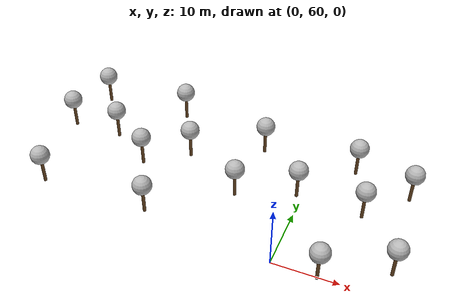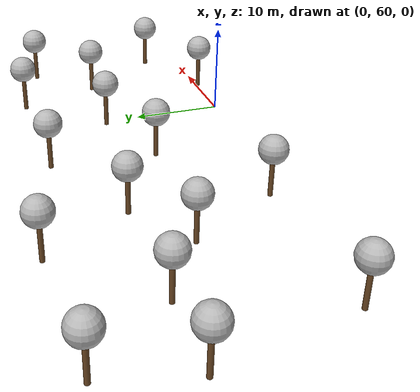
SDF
<sdf version="1.7">
 <world name="default">
  <model name="tree_simple">
   <static>1</static>
   <link name="link">
    <pose>0 0 0.1 0 -0 0</pose>
    <inertial>
     <mass>666</mass>
     <inertia>
      <ixx>0.0861167</ixx>
      <ixy>0</ixy>
      <ixz>0</ixz>
      <iyy>0.0861167</iyy>
      <iyz>0</iyz>
      <izz>0.0861167</izz>
     </inertia>
    </inertial>
    <collision name="collision_trunk">
     <pose>0 0 2 0 -0 0</pose>
     <geometry><cylinder><radius>0.25</radius><length>4</length></cylinder></geometry>
     <surface>
      <contact>
       <poissons_ratio>0.347</poissons_ratio>
       <elastic_modulus>8.8e+09</elastic_modulus>
       <ode><kp>100000</kp><kd>100</kd><max_vel>100</max_vel><min_depth>0.001</min_depth></ode>
      </contact>
      <friction>
       <torsional>
        <coefficient>1</coefficient>
        <use_patch_radius>0</use_patch_radius>
        <surface_radius>0.01</surface_radius>
       </torsional>
      </friction>
     </surface>
    </collision>
    <collision name="collision_treetop">
     <pose>0 0 5.2 0 -0 0</pose>
     <geometry><sphere><radius>1.5</radius></sphere></geometry>
     <surface>
      <contact>
       <poissons_ratio>0.347</poissons_ratio>
       <elastic_modulus>8.8e+09</elastic_modulus>
       <ode><kp>100000</kp><kd>100</kd><max_vel>100</max_vel><min_depth>0.001</min_depth></ode>
      </contact>
      <friction>
       <torsional>
        <coefficient>1</coefficient>
        <use_patch_radius>0</use_patch_radius>
        <surface_radius>0.01</surface_radius>
       </torsional>
      </friction>
     </surface>
    </collision>
    <visual name="trunk">
     <pose>0 0 2 0 -0 0</pose>
     <geometry><cylinder><radius>0.25</radius><length>4</length></cylinder></geometry>
     <material>
      <script>
       <uri>model://tree_simple/scripts</uri>
       <uri>model://tree_simple/materials/textures</uri>
       <name>TreeSimple/Trunk</name>
      </script>
     </material>
    </visual>
    <visual name="treetop">
     <pose>0 0 5.2 0 -0 0</pose>
     <geometry><sphere><radius>1.5</radius></sphere></geometry>
     <material>
      <script>
       <uri>model://tree_simple/scripts</uri>
       <uri>model://tree_simple/materials/textures</uri>
       <name>TreeSimple/Treetop</name>
      </script>
     </material>
    </visual>
   </link>
   <pose>6.82311 59.8354 0 0 -0 0</pose>
  </model>
  <model name="tree_simple_0_clone_0">
   <static>1</static>
   <link name="link">
    <pose>0 0 0.1 0 -0 0</pose>
    <inertial>
     <mass>666</mass>
     <inertia>
      <ixx>0.0861167</ixx>
      <ixy>0</ixy>
      <ixz>0</ixz>
      <iyy>0.0861167</iyy>
      <iyz>0</iyz>
      <izz>0.0861167</izz>
     </inertia>
    </inertial>
    <collision name="collision_trunk">
     <pose>0 0 2 0 -0 0</pose>
     <geometry><cylinder><radius>0.25</radius><length>4</length></cylinder></geometry>
     <surface>
      <contact>
       <poissons_ratio>0.347</poissons_ratio>
       <elastic_modulus>8.8e+09</elastic_modulus>
       <ode><kp>100000</kp><kd>100</kd><max_vel>100</max_vel><min_depth>0.001</min_depth></ode>
      </contact>
      <friction>
       <torsional>
        <coefficient>1</coefficient>
        <use_patch_radius>0</use_patch_radius>
        <surface_radius>0.01</surface_radius>
       </torsional>
      </friction>
     </surface>
    </collision>
    <collision name="collision_treetop">
     <pose>0 0 5.2 0 -0 0</pose>
     <geometry><sphere><radius>1.5</radius></sphere></geometry>
     <surface>
      <contact>
       <poissons_ratio>0.347</poissons_ratio>
       <elastic_modulus>8.8e+09</elastic_modulus>
       <ode><kp>100000</kp><kd>100</kd><max_vel>100</max_vel><min_depth>0.001</min_depth></ode>
      </contact>
      <friction>
       <torsional>
        <coefficient>1</coefficient>
        <use_patch_radius>0</use_patch_radius>
        <surface_radius>0.01</surface_radius>
       </torsional>
      </friction>
     </surface>
    </collision>
    <visual name="trunk">
     <pose>0 0 2 0 -0 0</pose>
     <geometry><cylinder><radius>0.25</radius><length>4</length></cylinder></geometry>
     <material>
      <script>
       <uri>model://tree_simple/scripts</uri>
       <uri>model://tree_simple/materials/textures</uri>
       <name>TreeSimple/Trunk</name>
      </script>
     </material>
    </visual>
    <visual name="treetop">
     <pose>0 0 5.2 0 -0 0</pose>
     <geometry><sphere><radius>1.5</radius></sphere></geometry>
     <material>
      <script>
       <uri>model://tree_simple/scripts</uri>
       <uri>model://tree_simple/materials/textures</uri>
       <name>TreeSimple/Treetop</name>
      </script>
     </material>
    </visual>
   </link>
   <pose>-26.1429 71.9417 0 0 -0 0</pose>
  </model>
  <model name="tree_simple_0_clone_0_clone_clone">
   <static>1</static>
   <link name="link">
    <pose>0 0 0.1 0 -0 0</pose>
    <inertial>
     <mass>666</mass>
     <inertia>
      <ixx>0.0861167</ixx>
      <ixy>0</ixy>
      <ixz>0</ixz>
      <iyy>0.0861167</iyy>
      <iyz>0</iyz>
      <izz>0.0861167</izz>
     </inertia>
    </inertial>
    <collision name="collision_trunk">
     <pose>0 0 2 0 -0 0</pose>
     <geometry><cylinder><radius>0.25</radius><length>4</length></cylinder></geometry>
     <surface>
      <contact>
       <poissons_ratio>0.347</poissons_ratio>
       <elastic_modulus>8.8e+09</elastic_modulus>
       <ode><kp>100000</kp><kd>100</kd><max_vel>100</max_vel><min_depth>0.001</min_depth></ode>
      </contact>
      <friction>
       <torsional>
        <coefficient>1</coefficient>
        <use_patch_radius>0</use_patch_radius>
        <surface_radius>0.01</surface_radius>
       </torsional>
      </friction>
     </surface>
    </collision>
    <collision name="collision_treetop">
     <pose>0 0 5.2 0 -0 0</pose>
     <geometry><sphere><radius>1.5</radius></sphere></geometry>
     <surface>
      <contact>
       <poissons_ratio>0.347</poissons_ratio>
       <elastic_modulus>8.8e+09</elastic_modulus>
       <ode><kp>100000</kp><kd>100</kd><max_vel>100</max_vel><min_depth>0.001</min_depth></ode>
      </contact>
      <friction>
       <torsional>
        <coefficient>1</coefficient>
        <use_patch_radius>0</use_patch_radius>
        <surface_radius>0.01</surface_radius>
       </torsional>
      </friction>
     </surface>
    </collision>
    <visual name="trunk">
     <pose>0 0 2 0 -0 0</pose>
     <geometry><cylinder><radius>0.25</radius><length>4</length></cylinder></geometry>
     <material>
      <script>
       <uri>model://tree_simple/scripts</uri>
       <uri>model://tree_simple/materials/textures</uri>
       <name>TreeSimple/Trunk</name>
      </script>
     </material>
    </visual>
    <visual name="treetop">
     <pose>0 0 5.2 0 -0 0</pose>
     <geometry><sphere><radius>1.5</radius></sphere></geometry>
     <material>
      <script>
       <uri>model://tree_simple/scripts</uri>
       <uri>model://tree_simple/materials/textures</uri>
       <name>TreeSimple/Treetop</name>
      </script>
     </material>
    </visual>
   </link>
   <pose>-38.4069 62.1845 0 0 -0 0</pose>
  </model>
  <model name="tree_simple_0_clone_0_clone_clone_0">
   <static>1</static>
   <link name="link">
    <pose>0 0 0.1 0 -0 0</pose>
    <inertial>
     <mass>666</mass>
     <inertia>
      <ixx>0.0861167</ixx>
      <ixy>0</ixy>
      <ixz>0</ixz>
      <iyy>0.0861167</iyy>
      <iyz>0</iyz>
      <izz>0.0861167</izz>
     </inertia>
    </inertial>
    <collision name="collision_trunk">
     <pose>0 0 2 0 -0 0</pose>
     <geometry><cylinder><radius>0.25</radius><length>4</length></cylinder></geometry>
     <surface>
      <contact>
       <poissons_ratio>0.347</poissons_ratio>
       <elastic_modulus>8.8e+09</elastic_modulus>
       <ode><kp>100000</kp><kd>100</kd><max_vel>100</max_vel><min_depth>0.001</min_depth></ode>
      </contact>
      <friction>
       <torsional>
        <coefficient>1</coefficient>
        <use_patch_radius>0</use_patch_radius>
        <surface_radius>0.01</surface_radius>
       </torsional>
      </friction>
     </surface>
    </collision>
    <collision name="collision_treetop">
     <pose>0 0 5.2 0 -0 0</pose>
     <geometry><sphere><radius>1.5</radius></sphere></geometry>
     <surface>
      <contact>
       <poissons_ratio>0.347</poissons_ratio>
       <elastic_modulus>8.8e+09</elastic_modulus>
       <ode><kp>100000</kp><kd>100</kd><max_vel>100</max_vel><min_depth>0.001</min_depth></ode>
      </contact>
      <friction>
       <torsional>
        <coefficient>1</coefficient>
        <use_patch_radius>0</use_patch_radius>
        <surface_radius>0.01</surface_radius>
       </torsional>
      </friction>
     </surface>
    </collision>
    <visual name="trunk">
     <pose>0 0 2 0 -0 0</pose>
     <geometry><cylinder><radius>0.25</radius><length>4</length></cylinder></geometry>
     <material>
      <script>
       <uri>model://tree_simple/scripts</uri>
       <uri>model://tree_simple/materials/textures</uri>
       <name>TreeSimple/Trunk</name>
      </script>
     </material>
    </visual>
    <visual name="treetop">
     <pose>0 0 5.2 0 -0 0</pose>
     <geometry><sphere><radius>1.5</radius></sphere></geometry>
     <material>
      <script>
       <uri>model://tree_simple/scripts</uri>
       <uri>model://tree_simple/materials/textures</uri>
       <name>TreeSimple/Treetop</name>
      </script>
     </material>
    </visual>
   </link>
   <pose>9.58213 73.4959 0 0 -0 0</pose>
  </model>
  <model name="tree_simple_0_clone_0_clone_clone_9">
   <static>1</static>
   <link name="link">
    <pose>0 0 0.1 0 -0 0</pose>
    <inertial>
     <mass>666</mass>
     <inertia>
      <ixx>0.0861167</ixx>
      <ixy>0</ixy>
      <ixz>0</ixz>
      <iyy>0.0861167</iyy>
      <iyz>0</iyz>
      <izz>0.0861167</izz>
     </inertia>
    </inertial>
    <collision name="collision_trunk">
     <pose>0 0 2 0 -0 0</pose>
     <geometry><cylinder><radius>0.25</radius><length>4</length></cylinder></geometry>
     <surface>
      <contact>
       <poissons_ratio>0.347</poissons_ratio>
       <elastic_modulus>8.8e+09</elastic_modulus>
       <ode><kp>100000</kp><kd>100</kd><max_vel>100</max_vel><min_depth>0.001</min_depth></ode>
      </contact>
      <friction>
       <torsional>
        <coefficient>1</coefficient>
        <use_patch_radius>0</use_patch_radius>
        <surface_radius>0.01</surface_radius>
       </torsional>
      </friction>
     </surface>
    </collision>
    <collision name="collision_treetop">
     <pose>0 0 5.2 0 -0 0</pose>
     <geometry><sphere><radius>1.5</radius></sphere></geometry>
     <surface>
      <contact>
       <poissons_ratio>0.347</poissons_ratio>
       <elastic_modulus>8.8e+09</elastic_modulus>
       <ode><kp>100000</kp><kd>100</kd><max_vel>100</max_vel><min_depth>0.001</min_depth></ode>
      </contact>
      <friction>
       <torsional>
        <coefficient>1</coefficient>
        <use_patch_radius>0</use_patch_radius>
        <surface_radius>0.01</surface_radius>
       </torsional>
      </friction>
     </surface>
    </collision>
    <visual name="trunk">
     <pose>0 0 2 0 -0 0</pose>
     <geometry><cylinder><radius>0.25</radius><length>4</length></cylinder></geometry>
     <material>
      <script>
       <uri>model://tree_simple/scripts</uri>
       <uri>model://tree_simple/materials/textures</uri>
       <name>TreeSimple/Trunk</name>
      </script>
     </material>
    </visual>
    <visual name="treetop">
     <pose>0 0 5.2 0 -0 0</pose>
     <geometry><sphere><radius>1.5</radius></sphere></geometry>
     <material>
      <script>
       <uri>model://tree_simple/scripts</uri>
       <uri>model://tree_simple/materials/textures</uri>
       <name>TreeSimple/Treetop</name>
      </script>
     </material>
    </visual>
   </link>
   <pose>-0.789798 74.0707 0 0 -0 0</pose>
  </model>
  <model name="tree_simple_0_clone_0_clone_clone_10">
   <static>1</static>
   <link name="link">
    <pose>0 0 0.1 0 -0 0</pose>
    <inertial>
     <mass>666</mass>
     <inertia>
      <ixx>0.0861167</ixx>
      <ixy>0</ixy>
      <ixz>0</ixz>
      <iyy>0.0861167</iyy>
      <iyz>0</iyz>
      <izz>0.0861167</izz>
     </inertia>
    </inertial>
    <collision name="collision_trunk">
     <pose>0 0 2 0 -0 0</pose>
     <geometry><cylinder><radius>0.25</radius><length>4</length></cylinder></geometry>
     <surface>
      <contact>
       <poissons_ratio>0.347</poissons_ratio>
       <elastic_modulus>8.8e+09</elastic_modulus>
       <ode><kp>100000</kp><kd>100</kd><max_vel>100</max_vel><min_depth>0.001</min_depth></ode>
      </contact>
      <friction>
       <torsional>
        <coefficient>1</coefficient>
        <use_patch_radius>0</use_patch_radius>
        <surface_radius>0.01</surface_radius>
       </torsional>
      </friction>
     </surface>
    </collision>
    <collision name="collision_treetop">
     <pose>0 0 5.2 0 -0 0</pose>
     <geometry><sphere><radius>1.5</radius></sphere></geometry>
     <surface>
      <contact>
       <poissons_ratio>0.347</poissons_ratio>
       <elastic_modulus>8.8e+09</elastic_modulus>
       <ode><kp>100000</kp><kd>100</kd><max_vel>100</max_vel><min_depth>0.001</min_depth></ode>
      </contact>
      <friction>
       <torsional>
        <coefficient>1</coefficient>
        <use_patch_radius>0</use_patch_radius>
        <surface_radius>0.01</surface_radius>
       </torsional>
      </friction>
     </surface>
    </collision>
    <visual name="trunk">
     <pose>0 0 2 0 -0 0</pose>
     <geometry><cylinder><radius>0.25</radius><length>4</length></cylinder></geometry>
     <material>
      <script>
       <uri>model://tree_simple/scripts</uri>
       <uri>model://tree_simple/materials/textures</uri>
       <name>TreeSimple/Trunk</name>
      </script>
     </material>
    </visual>
    <visual name="treetop">
     <pose>0 0 5.2 0 -0 0</pose>
     <geometry><sphere><radius>1.5</radius></sphere></geometry>
     <material>
      <script>
       <uri>model://tree_simple/scripts</uri>
       <uri>model://tree_simple/materials/textures</uri>
       <name>TreeSimple/Treetop</name>
      </script>
     </material>
    </visual>
   </link>
   <pose>-33.1642 76.5434 0 0 -0 0</pose>
  </model>
  <model name="tree_simple_0_clone_0_clone_clone_11">
   <static>1</static>
   <link name="link">
    <pose>0 0 0.1 0 -0 0</pose>
    <inertial>
     <mass>666</mass>
     <inertia>
      <ixx>0.0861167</ixx>
      <ixy>0</ixy>
      <ixz>0</ixz>
      <iyy>0.0861167</iyy>
      <iyz>0</iyz>
      <izz>0.0861167</izz>
     </inertia>
    </inertial>
    <collision name="collision_trunk">
     <pose>0 0 2 0 -0 0</pose>
     <geometry><cylinder><radius>0.25</radius><length>4</length></cylinder></geometry>
     <surface>
      <contact>
       <poissons_ratio>0.347</poissons_ratio>
       <elastic_modulus>8.8e+09</elastic_modulus>
       <ode><kp>100000</kp><kd>100</kd><max_vel>100</max_vel><min_depth>0.001</min_depth></ode>
      </contact>
      <friction>
       <torsional>
        <coefficient>1</coefficient>
        <use_patch_radius>0</use_patch_radius>
        <surface_radius>0.01</surface_radius>
       </torsional>
      </friction>
     </surface>
    </collision>
    <collision name="collision_treetop">
     <pose>0 0 5.2 0 -0 0</pose>
     <geometry><sphere><radius>1.5</radius></sphere></geometry>
     <surface>
      <contact>
       <poissons_ratio>0.347</poissons_ratio>
       <elastic_modulus>8.8e+09</elastic_modulus>
       <ode><kp>100000</kp><kd>100</kd><max_vel>100</max_vel><min_depth>0.001</min_depth></ode>
      </contact>
      <friction>
       <torsional>
        <coefficient>1</coefficient>
        <use_patch_radius>0</use_patch_radius>
        <surface_radius>0.01</surface_radius>
       </torsional>
      </friction>
     </surface>
    </collision>
    <visual name="trunk">
     <pose>0 0 2 0 -0 0</pose>
     <geometry><cylinder><radius>0.25</radius><length>4</length></cylinder></geometry>
     <material>
      <script>
       <uri>model://tree_simple/scripts</uri>
       <uri>model://tree_simple/materials/textures</uri>
       <name>TreeSimple/Trunk</name>
      </script>
     </material>
    </visual>
    <visual name="treetop">
     <pose>0 0 5.2 0 -0 0</pose>
     <geometry><sphere><radius>1.5</radius></sphere></geometry>
     <material>
      <script>
       <uri>model://tree_simple/scripts</uri>
       <uri>model://tree_simple/materials/textures</uri>
       <name>TreeSimple/Treetop</name>
      </script>
     </material>
    </visual>
   </link>
   <pose>-19.78 76.5403 0 0 -0 0</pose>
  </model>
  <model name="tree_simple_0_clone_0_clone_clone_11_clone_0">
   <static>1</static>
   <link name="link">
    <pose>0 0 0.1 0 -0 0</pose>
    <inertial>
     <mass>666</mass>
     <inertia>
      <ixx>0.0861167</ixx>
      <ixy>0</ixy>
      <ixz>0</ixz>
      <iyy>0.0861167</iyy>
      <iyz>0</iyz>
      <izz>0.0861167</izz>
     </inertia>
    </inertial>
    <collision name="collision_trunk">
     <pose>0 0 2 0 -0 0</pose>
     <geometry><cylinder><radius>0.25</radius><length>4</length></cylinder></geometry>
     <surface>
      <contact>
       <poissons_ratio>0.347</poissons_ratio>
       <elastic_modulus>8.8e+09</elastic_modulus>
       <ode><kp>100000</kp><kd>100</kd><max_vel>100</max_vel><min_depth>0.001</min_depth></ode>
      </contact>
      <friction>
       <torsional>
        <coefficient>1</coefficient>
        <use_patch_radius>0</use_patch_radius>
        <surface_radius>0.01</surface_radius>
       </torsional>
      </friction>
     </surface>
    </collision>
    <collision name="collision_treetop">
     <pose>0 0 5.2 0 -0 0</pose>
     <geometry><sphere><radius>1.5</radius></sphere></geometry>
     <surface>
      <contact>
       <poissons_ratio>0.347</poissons_ratio>
       <elastic_modulus>8.8e+09</elastic_modulus>
       <ode><kp>100000</kp><kd>100</kd><max_vel>100</max_vel><min_depth>0.001</min_depth></ode>
      </contact>
      <friction>
       <torsional>
        <coefficient>1</coefficient>
        <use_patch_radius>0</use_patch_radius>
        <surface_radius>0.01</surface_radius>
       </torsional>
      </friction>
     </surface>
    </collision>
    <visual name="trunk">
     <pose>0 0 2 0 -0 0</pose>
     <geometry><cylinder><radius>0.25</radius><length>4</length></cylinder></geometry>
     <material>
      <script>
       <uri>model://tree_simple/scripts</uri>
       <uri>model://tree_simple/materials/textures</uri>
       <name>TreeSimple/Trunk</name>
      </script>
     </material>
    </visual>
    <visual name="treetop">
     <pose>0 0 5.2 0 -0 0</pose>
     <geometry><sphere><radius>1.5</radius></sphere></geometry>
     <material>
      <script>
       <uri>model://tree_simple/scripts</uri>
       <uri>model://tree_simple/materials/textures</uri>
       <name>TreeSimple/Treetop</name>
      </script>
     </material>
    </visual>
   </link>
   <pose>-41.4475 76.4622 0 0 -0 0</pose>
  </model>
  <model name="tree_simple_0_clone_0_clone_clone_11_clone_1">
   <static>1</static>
   <link name="link">
    <pose>0 0 0.1 0 -0 0</pose>
    <inertial>
     <mass>666</mass>
     <inertia>
      <ixx>0.0861167</ixx>
      <ixy>0</ixy>
      <ixz>0</ixz>
      <iyy>0.0861167</iyy>
      <iyz>0</iyz>
      <izz>0.0861167</izz>
     </inertia>
    </inertial>
    <collision name="collision_trunk">
     <pose>0 0 2 0 -0 0</pose>
     <geometry><cylinder><radius>0.25</radius><length>4</length></cylinder></geometry>
     <surface>
      <contact>
       <poissons_ratio>0.347</poissons_ratio>
       <elastic_modulus>8.8e+09</elastic_modulus>
       <ode><kp>100000</kp><kd>100</kd><max_vel>100</max_vel><min_depth>0.001</min_depth></ode>
      </contact>
      <friction>
       <torsional>
        <coefficient>1</coefficient>
        <use_patch_radius>0</use_patch_radius>
        <surface_radius>0.01</surface_radius>
       </torsional>
      </friction>
     </surface>
    </collision>
    <collision name="collision_treetop">
     <pose>0 0 5.2 0 -0 0</pose>
     <geometry><sphere><radius>1.5</radius></sphere></geometry>
     <surface>
      <contact>
       <poissons_ratio>0.347</poissons_ratio>
       <elastic_modulus>8.8e+09</elastic_modulus>
       <ode><kp>100000</kp><kd>100</kd><max_vel>100</max_vel><min_depth>0.001</min_depth></ode>
      </contact>
      <friction>
       <torsional>
        <coefficient>1</coefficient>
        <use_patch_radius>0</use_patch_radius>
        <surface_radius>0.01</surface_radius>
       </torsional>
      </friction>
     </surface>
    </collision>
    <visual name="trunk">
     <pose>0 0 2 0 -0 0</pose>
     <geometry><cylinder><radius>0.25</radius><length>4</length></cylinder></geometry>
     <material>
      <script>
       <uri>model://tree_simple/scripts</uri>
       <uri>model://tree_simple/materials/textures</uri>
       <name>TreeSimple/Trunk</name>
      </script>
     </material>
    </visual>
    <visual name="treetop">
     <pose>0 0 5.2 0 -0 0</pose>
     <geometry><sphere><radius>1.5</radius></sphere></geometry>
     <material>
      <script>
       <uri>model://tree_simple/scripts</uri>
       <uri>model://tree_simple/materials/textures</uri>
       <name>TreeSimple/Treetop</name>
      </script>
     </material>
    </visual>
   </link>
   <pose>6.31212 82.5438 0 0 -0 0</pose>
  </model>
  <model name="tree_simple_0_clone_0_clone_clone_11_clone_2">
   <static>1</static>
   <link name="link">
    <pose>0 0 0.1 0 -0 0</pose>
    <inertial>
     <mass>666</mass>
     <inertia>
      <ixx>0.0861167</ixx>
      <ixy>0</ixy>
      <ixz>0</ixz>
      <iyy>0.0861167</iyy>
      <iyz>0</iyz>
      <izz>0.0861167</izz>
     </inertia>
    </inertial>
    <collision name="collision_trunk">
     <pose>0 0 2 0 -0 0</pose>
     <geometry><cylinder><radius>0.25</radius><length>4</length></cylinder></geometry>
     <surface>
      <contact>
       <poissons_ratio>0.347</poissons_ratio>
       <elastic_modulus>8.8e+09</elastic_modulus>
       <ode><kp>100000</kp><kd>100</kd><max_vel>100</max_vel><min_depth>0.001</min_depth></ode>
      </contact>
      <friction>
       <torsional>
        <coefficient>1</coefficient>
        <use_patch_radius>0</use_patch_radius>
        <surface_radius>0.01</surface_radius>
       </torsional>
      </friction>
     </surface>
    </collision>
    <collision name="collision_treetop">
     <pose>0 0 5.2 0 -0 0</pose>
     <geometry><sphere><radius>1.5</radius></sphere></geometry>
     <surface>
      <contact>
       <poissons_ratio>0.347</poissons_ratio>
       <elastic_modulus>8.8e+09</elastic_modulus>
       <ode><kp>100000</kp><kd>100</kd><max_vel>100</max_vel><min_depth>0.001</min_depth></ode>
      </contact>
      <friction>
       <torsional>
        <coefficient>1</coefficient>
        <use_patch_radius>0</use_patch_radius>
        <surface_radius>0.01</surface_radius>
       </torsional>
      </friction>
     </surface>
    </collision>
    <visual name="trunk">
     <pose>0 0 2 0 -0 0</pose>
     <geometry><cylinder><radius>0.25</radius><length>4</length></cylinder></geometry>
     <material>
      <script>
       <uri>model://tree_simple/scripts</uri>
       <uri>model://tree_simple/materials/textures</uri>
       <name>TreeSimple/Trunk</name>
      </script>
     </material>
    </visual>
    <visual name="treetop">
     <pose>0 0 5.2 0 -0 0</pose>
     <geometry><sphere><radius>1.5</radius></sphere></geometry>
     <material>
      <script>
       <uri>model://tree_simple/scripts</uri>
       <uri>model://tree_simple/materials/textures</uri>
       <name>TreeSimple/Treetop</name>
      </script>
     </material>
    </visual>
   </link>
   <pose>15.4317 79.7817 0 0 -0 0</pose>
  </model>
  <model name="tree_simple_0_clone_0_clone_clone_clone_0">
   <static>1</static>
   <link name="link">
    <pose>0 0 0.1 0 -0 0</pose>
    <inertial>
     <mass>666</mass>
     <inertia>
      <ixx>0.0861167</ixx>
      <ixy>0</ixy>
      <ixz>0</ixz>
      <iyy>0.0861167</iyy>
      <iyz>0</iyz>
      <izz>0.0861167</izz>
     </inertia>
    </inertial>
    <collision name="collision_trunk">
     <pose>0 0 2 0 -0 0</pose>
     <geometry><cylinder><radius>0.25</radius><length>4</length></cylinder></geometry>
     <surface>
      <contact>
       <poissons_ratio>0.347</poissons_ratio>
       <elastic_modulus>8.8e+09</elastic_modulus>
       <ode><kp>100000</kp><kd>100</kd><max_vel>100</max_vel><min_depth>0.001</min_depth></ode>
      </contact>
      <friction>
       <torsional>
        <coefficient>1</coefficient>
        <use_patch_radius>0</use_patch_radius>
        <surface_radius>0.01</surface_radius>
       </torsional>
      </friction>
     </surface>
    </collision>
    <collision name="collision_treetop">
     <pose>0 0 5.2 0 -0 0</pose>
     <geometry><sphere><radius>1.5</radius></sphere></geometry>
     <surface>
      <contact>
       <poissons_ratio>0.347</poissons_ratio>
       <elastic_modulus>8.8e+09</elastic_modulus>
       <ode><kp>100000</kp><kd>100</kd><max_vel>100</max_vel><min_depth>0.001</min_depth></ode>
      </contact>
      <friction>
       <torsional>
        <coefficient>1</coefficient>
        <use_patch_radius>0</use_patch_radius>
        <surface_radius>0.01</surface_radius>
       </torsional>
      </friction>
     </surface>
    </collision>
    <visual name="trunk">
     <pose>0 0 2 0 -0 0</pose>
     <geometry><cylinder><radius>0.25</radius><length>4</length></cylinder></geometry>
     <material>
      <script>
       <uri>model://tree_simple/scripts</uri>
       <uri>model://tree_simple/materials/textures</uri>
       <name>TreeSimple/Trunk</name>
      </script>
     </material>
    </visual>
    <visual name="treetop">
     <pose>0 0 5.2 0 -0 0</pose>
     <geometry><sphere><radius>1.5</radius></sphere></geometry>
     <material>
      <script>
       <uri>model://tree_simple/scripts</uri>
       <uri>model://tree_simple/materials/textures</uri>
       <name>TreeSimple/Treetop</name>
      </script>
     </material>
    </visual>
   </link>
   <pose>-20.859 62.2392 0 0 -0 0</pose>
  </model>
  <model name="tree_simple_0_clone_0_clone_clone_clone_1">
   <static>1</static>
   <link name="link">
    <pose>0 0 0.1 0 -0 0</pose>
    <inertial>
     <mass>666</mass>
     <inertia>
      <ixx>0.0861167</ixx>
      <ixy>0</ixy>
      <ixz>0</ixz>
      <iyy>0.0861167</iyy>
      <iyz>0</iyz>
      <izz>0.0861167</izz>
     </inertia>
    </inertial>
    <collision name="collision_trunk">
     <pose>0 0 2 0 -0 0</pose>
     <geometry><cylinder><radius>0.25</radius><length>4</length></cylinder></geometry>
     <surface>
      <contact>
       <poissons_ratio>0.347</poissons_ratio>
       <elastic_modulus>8.8e+09</elastic_modulus>
       <ode><kp>100000</kp><kd>100</kd><max_vel>100</max_vel><min_depth>0.001</min_depth></ode>
      </contact>
      <friction>
       <torsional>
        <coefficient>1</coefficient>
        <use_patch_radius>0</use_patch_radius>
        <surface_radius>0.01</surface_radius>
       </torsional>
      </friction>
     </surface>
    </collision>
    <collision name="collision_treetop">
     <pose>0 0 5.2 0 -0 0</pose>
     <geometry><sphere><radius>1.5</radius></sphere></geometry>
     <surface>
      <contact>
       <poissons_ratio>0.347</poissons_ratio>
       <elastic_modulus>8.8e+09</elastic_modulus>
       <ode><kp>100000</kp><kd>100</kd><max_vel>100</max_vel><min_depth>0.001</min_depth></ode>
      </contact>
      <friction>
       <torsional>
        <coefficient>1</coefficient>
        <use_patch_radius>0</use_patch_radius>
        <surface_radius>0.01</surface_radius>
       </torsional>
      </friction>
     </surface>
    </collision>
    <visual name="trunk">
     <pose>0 0 2 0 -0 0</pose>
     <geometry><cylinder><radius>0.25</radius><length>4</length></cylinder></geometry>
     <material>
      <script>
       <uri>model://tree_simple/scripts</uri>
       <uri>model://tree_simple/materials/textures</uri>
       <name>TreeSimple/Trunk</name>
      </script>
     </material>
    </visual>
    <visual name="treetop">
     <pose>0 0 5.2 0 -0 0</pose>
     <geometry><sphere><radius>1.5</radius></sphere></geometry>
     <material>
      <script>
       <uri>model://tree_simple/scripts</uri>
       <uri>model://tree_simple/materials/textures</uri>
       <name>TreeSimple/Treetop</name>
      </script>
     </material>
    </visual>
   </link>
   <pose>-39.4409 84.8363 0 0 -0 0</pose>
  </model>
  <model name="tree_simple_0_clone_0_clone_clone_clone_0_clone">
   <static>1</static>
   <link name="link">
    <pose>0 0 0.1 0 -0 0</pose>
    <inertial>
     <mass>666</mass>
     <inertia>
      <ixx>0.0861167</ixx>
      <ixy>0</ixy>
      <ixz>0</ixz>
      <iyy>0.0861167</iyy>
      <iyz>0</iyz>
      <izz>0.0861167</izz>
     </inertia>
    </inertial>
    <collision name="collision_trunk">
     <pose>0 0 2 0 -0 0</pose>
     <geometry><cylinder><radius>0.25</radius><length>4</length></cylinder></geometry>
     <surface>
      <contact>
       <poissons_ratio>0.347</poissons_ratio>
       <elastic_modulus>8.8e+09</elastic_modulus>
       <ode><kp>100000</kp><kd>100</kd><max_vel>100</max_vel><min_depth>0.001</min_depth></ode>
      </contact>
      <friction>
       <torsional>
        <coefficient>1</coefficient>
        <use_patch_radius>0</use_patch_radius>
        <surface_radius>0.01</surface_radius>
       </torsional>
      </friction>
     </surface>
    </collision>
    <collision name="collision_treetop">
     <pose>0 0 5.2 0 -0 0</pose>
     <geometry><sphere><radius>1.5</radius></sphere></geometry>
     <surface>
      <contact>
       <poissons_ratio>0.347</poissons_ratio>
       <elastic_modulus>8.8e+09</elastic_modulus>
       <ode><kp>100000</kp><kd>100</kd><max_vel>100</max_vel><min_depth>0.001</min_depth></ode>
      </contact>
      <friction>
       <torsional>
        <coefficient>1</coefficient>
        <use_patch_radius>0</use_patch_radius>
        <surface_radius>0.01</surface_radius>
       </torsional>
      </friction>
     </surface>
    </collision>
    <visual name="trunk">
     <pose>0 0 2 0 -0 0</pose>
     <geometry><cylinder><radius>0.25</radius><length>4</length></cylinder></geometry>
     <material>
      <script>
       <uri>model://tree_simple/scripts</uri>
       <uri>model://tree_simple/materials/textures</uri>
       <name>TreeSimple/Trunk</name>
      </script>
     </material>
    </visual>
    <visual name="treetop">
     <pose>0 0 5.2 0 -0 0</pose>
     <geometry><sphere><radius>1.5</radius></sphere></geometry>
     <material>
      <script>
       <uri>model://tree_simple/scripts</uri>
       <uri>model://tree_simple/materials/textures</uri>
       <name>TreeSimple/Treetop</name>
      </script>
     </material>
    </visual>
   </link>
   <pose>-24.768 85.6073 0 0 -0 0</pose>
  </model>
  <model name="tree_simple_0_clone_0_clone_clone_clone_0_clone_0">
   <static>1</static>
   <link name="link">
    <pose>0 0 0.1 0 -0 0</pose>
    <inertial>
     <mass>666</mass>
     <inertia>
      <ixx>0.0861167</ixx>
      <ixy>0</ixy>
      <ixz>0</ixz>
      <iyy>0.0861167</iyy>
      <iyz>0</iyz>
      <izz>0.0861167</izz>
     </inertia>
    </inertial>
    <collision name="collision_trunk">
     <pose>0 0 2 0 -0 0</pose>
     <geometry><cylinder><radius>0.25</radius><length>4</length></cylinder></geometry>
     <surface>
      <contact>
       <poissons_ratio>0.347</poissons_ratio>
       <elastic_modulus>8.8e+09</elastic_modulus>
       <ode><kp>100000</kp><kd>100</kd><max_vel>100</max_vel><min_depth>0.001</min_depth></ode>
      </contact>
      <friction>
       <torsional>
        <coefficient>1</coefficient>
        <use_patch_radius>0</use_patch_radius>
        <surface_radius>0.01</surface_radius>
       </torsional>
      </friction>
     </surface>
    </collision>
    <collision name="collision_treetop">
     <pose>0 0 5.2 0 -0 0</pose>
     <geometry><sphere><radius>1.5</radius></sphere></geometry>
     <surface>
      <contact>
       <poissons_ratio>0.347</poissons_ratio>
       <elastic_modulus>8.8e+09</elastic_modulus>
       <ode><kp>100000</kp><kd>100</kd><max_vel>100</max_vel><min_depth>0.001</min_depth></ode>
      </contact>
      <friction>
       <torsional>
        <coefficient>1</coefficient>
        <use_patch_radius>0</use_patch_radius>
        <surface_radius>0.01</surface_radius>
       </torsional>
      </friction>
     </surface>
    </collision>
    <visual name="trunk">
     <pose>0 0 2 0 -0 0</pose>
     <geometry><cylinder><radius>0.25</radius><length>4</length></cylinder></geometry>
     <material>
      <script>
       <uri>model://tree_simple/scripts</uri>
       <uri>model://tree_simple/materials/textures</uri>
       <name>TreeSimple/Trunk</name>
      </script>
     </material>
    </visual>
    <visual name="treetop">
     <pose>0 0 5.2 0 -0 0</pose>
     <geometry><sphere><radius>1.5</radius></sphere></geometry>
     <material>
      <script>
       <uri>model://tree_simple/scripts</uri>
       <uri>model://tree_simple/materials/textures</uri>
       <name>TreeSimple/Treetop</name>
      </script>
     </material>
    </visual>
   </link>
   <pose>-8.94884 82.1007 0 0 -0 0</pose>
  </model>
  <model name="tree_simple_0_clone_0_clone_clone_clone_0_clone_1">
   <static>1</static>
   <link name="link">
    <pose>0 0 0.1 0 -0 0</pose>
    <inertial>
     <mass>666</mass>
     <inertia>
      <ixx>0.0861167</ixx>
      <ixy>0</ixy>
      <ixz>0</ixz>
      <iyy>0.0861167</iyy>
      <iyz>0</iyz>
      <izz>0.0861167</izz>
     </inertia>
    </inertial>
    <collision name="collision_trunk">
     <pose>0 0 2 0 -0 0</pose>
     <geometry><cylinder><radius>0.25</radius><length>4</length></cylinder></geometry>
     <surface>
      <contact>
       <poissons_ratio>0.347</poissons_ratio>
       <elastic_modulus>8.8e+09</elastic_modulus>
       <ode><kp>100000</kp><kd>100</kd><max_vel>100</max_vel><min_depth>0.001</min_depth></ode>
      </contact>
      <friction>
       <torsional>
        <coefficient>1</coefficient>
        <use_patch_radius>0</use_patch_radius>
        <surface_radius>0.01</surface_radius>
       </torsional>
      </friction>
     </surface>
    </collision>
    <collision name="collision_treetop">
     <pose>0 0 5.2 0 -0 0</pose>
     <geometry><sphere><radius>1.5</radius></sphere></geometry>
     <surface>
      <contact>
       <poissons_ratio>0.347</poissons_ratio>
       <elastic_modulus>8.8e+09</elastic_modulus>
       <ode><kp>100000</kp><kd>100</kd><max_vel>100</max_vel><min_depth>0.001</min_depth></ode>
      </contact>
      <friction>
       <torsional>
        <coefficient>1</coefficient>
        <use_patch_radius>0</use_patch_radius>
        <surface_radius>0.01</surface_radius>
       </torsional>
      </friction>
     </surface>
    </collision>
    <visual name="trunk">
     <pose>0 0 2 0 -0 0</pose>
     <geometry><cylinder><radius>0.25</radius><length>4</length></cylinder></geometry>
     <material>
      <script>
       <uri>model://tree_simple/scripts</uri>
       <uri>model://tree_simple/materials/textures</uri>
       <name>TreeSimple/Trunk</name>
      </script>
     </material>
    </visual>
    <visual name="treetop">
     <pose>0 0 5.2 0 -0 0</pose>
     <geometry><sphere><radius>1.5</radius></sphere></geometry>
     <material>
      <script>
       <uri>model://tree_simple/scripts</uri>
       <uri>model://tree_simple/materials/textures</uri>
       <name>TreeSimple/Treetop</name>
      </script>
     </material>
    </visual>
   </link>
   <pose>-9.69081 70.677 0 0 -0 0</pose>
  </model>
  <model name="tree_simple_0_clone_0_clone_clone_clone_0_clone_2_clone_0_clone">
   <static>1</static>
   <link name="link">
    <pose>0 0 0.1 0 -0 0</pose>
    <inertial>
     <mass>666</mass>
     <inertia>
      <ixx>0.0861167</ixx>
      <ixy>0</ixy>
      <ixz>0</ixz>
      <iyy>0.0861167</iyy>
      <iyz>0</iyz>
      <izz>0.0861167</izz>
     </inertia>
    </inertial>
    <collision name="collision_trunk">
     <pose>0 0 2 0 -0 0</pose>
     <geometry><cylinder><radius>0.25</radius><length>4</length></cylinder></geometry>
     <surface>
      <contact>
       <poissons_ratio>0.347</poissons_ratio>
       <elastic_modulus>8.8e+09</elastic_modulus>
       <ode><kp>100000</kp><kd>100</kd><max_vel>100</max_vel><min_depth>0.001</min_depth></ode>
      </contact>
      <friction>
       <torsional>
        <coefficient>1</coefficient>
        <use_patch_radius>0</use_patch_radius>
        <surface_radius>0.01</surface_radius>
       </torsional>
      </friction>
     </surface>
    </collision>
    <collision name="collision_treetop">
     <pose>0 0 5.2 0 -0 0</pose>
     <geometry><sphere><radius>1.5</radius></sphere></geometry>
     <surface>
      <contact>
       <poissons_ratio>0.347</poissons_ratio>
       <elastic_modulus>8.8e+09</elastic_modulus>
       <ode><kp>100000</kp><kd>100</kd><max_vel>100</max_vel><min_depth>0.001</min_depth></ode>
      </contact>
      <friction>
       <torsional>
        <coefficient>1</coefficient>
        <use_patch_radius>0</use_patch_radius>
        <surface_radius>0.01</surface_radius>
       </torsional>
      </friction>
     </surface>
    </collision>
    <visual name="trunk">
     <pose>0 0 2 0 -0 0</pose>
     <geometry><cylinder><radius>0.25</radius><length>4</length></cylinder></geometry>
     <material>
      <script>
       <uri>model://tree_simple/scripts</uri>
       <uri>model://tree_simple/materials/textures</uri>
       <name>TreeSimple/Trunk</name>
      </script>
     </material>
    </visual>
    <visual name="treetop">
     <pose>0 0 5.2 0 -0 0</pose>
     <geometry><sphere><radius>1.5</radius></sphere></geometry>
     <material>
      <script>
       <uri>model://tree_simple/scripts</uri>
       <uri>model://tree_simple/materials/textures</uri>
       <name>TreeSimple/Treetop</name>
      </script>
     </material>
    </visual>
   </link>
   <pose>16.1612 64.3534 0 0 -0 0</pose>
  </model>
 </world>
</sdf>
